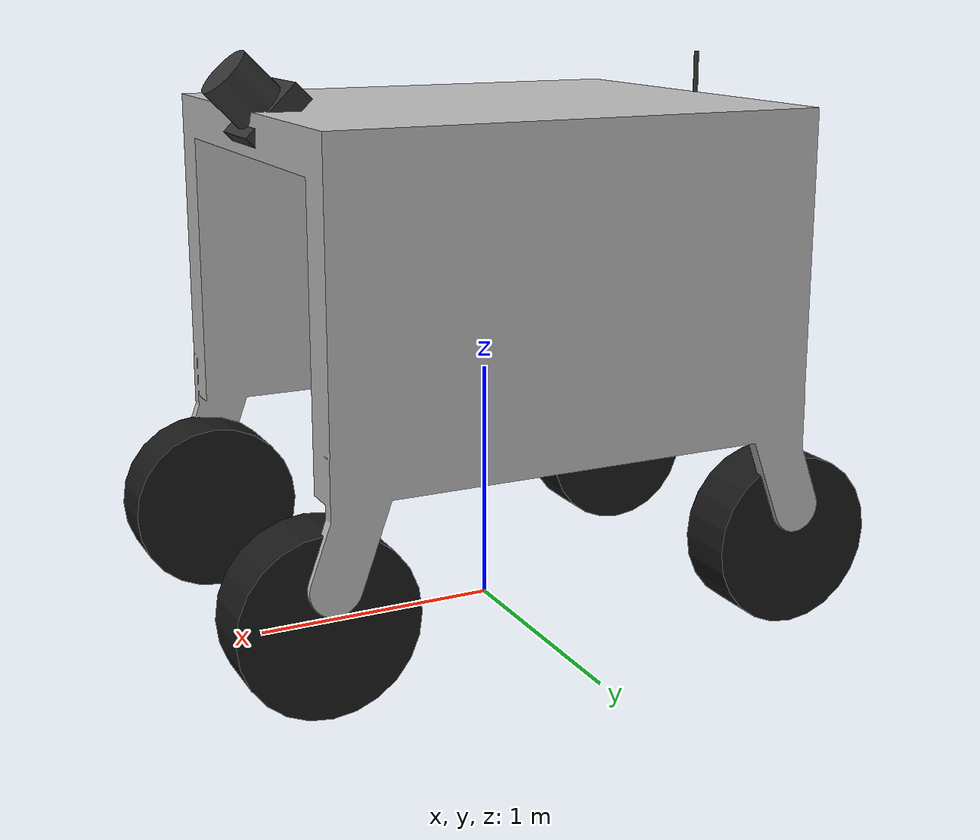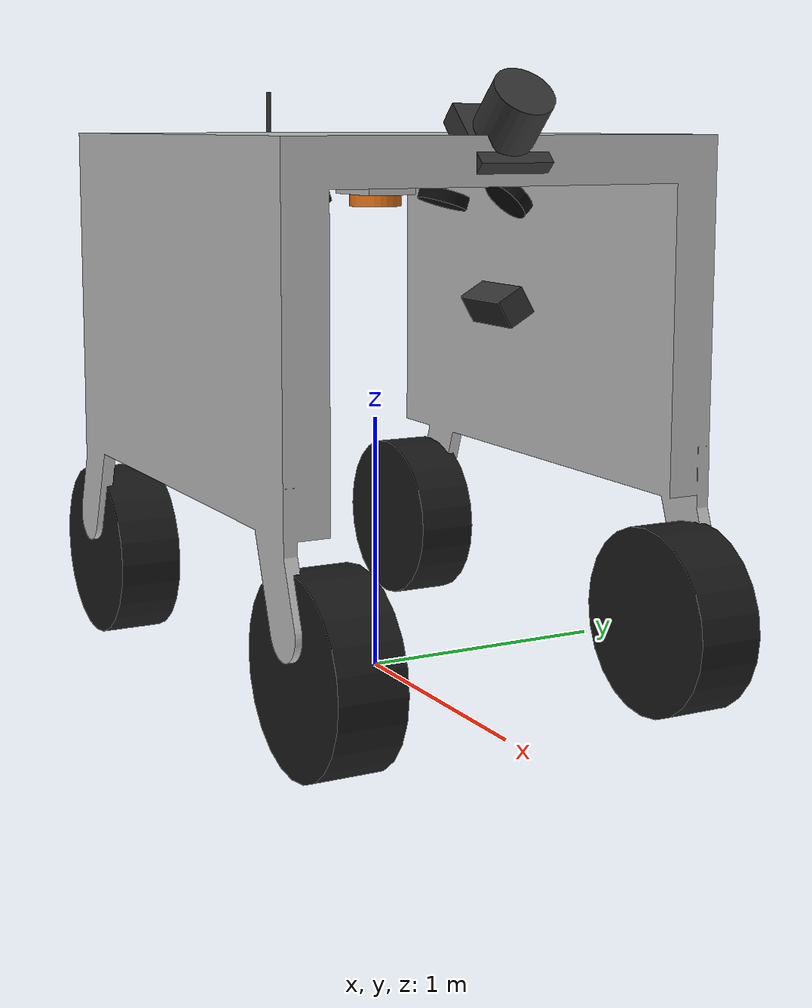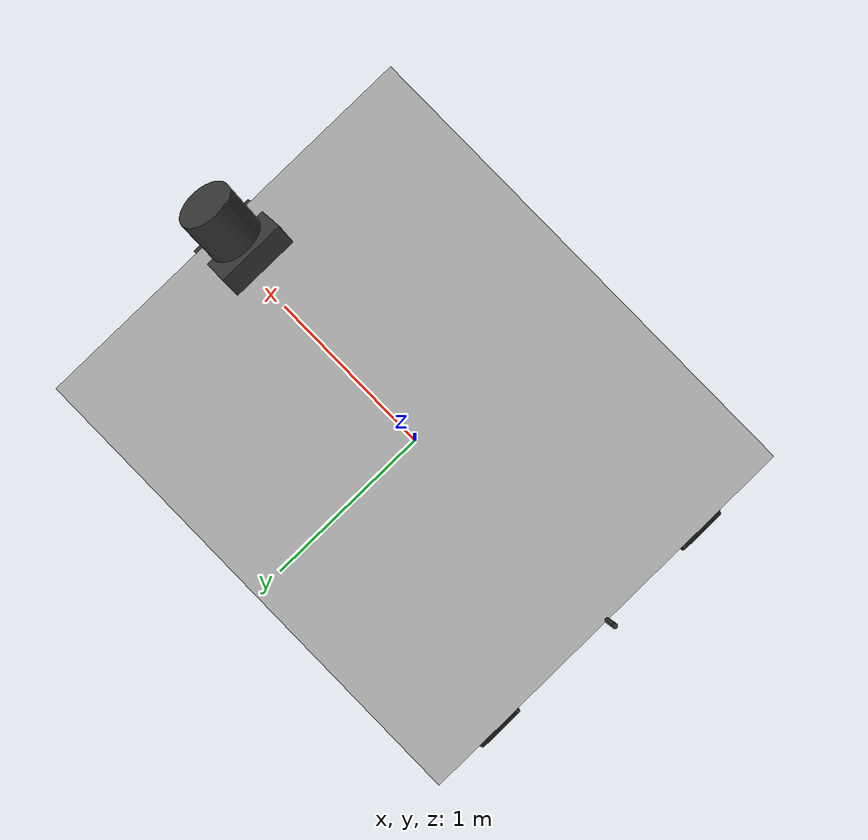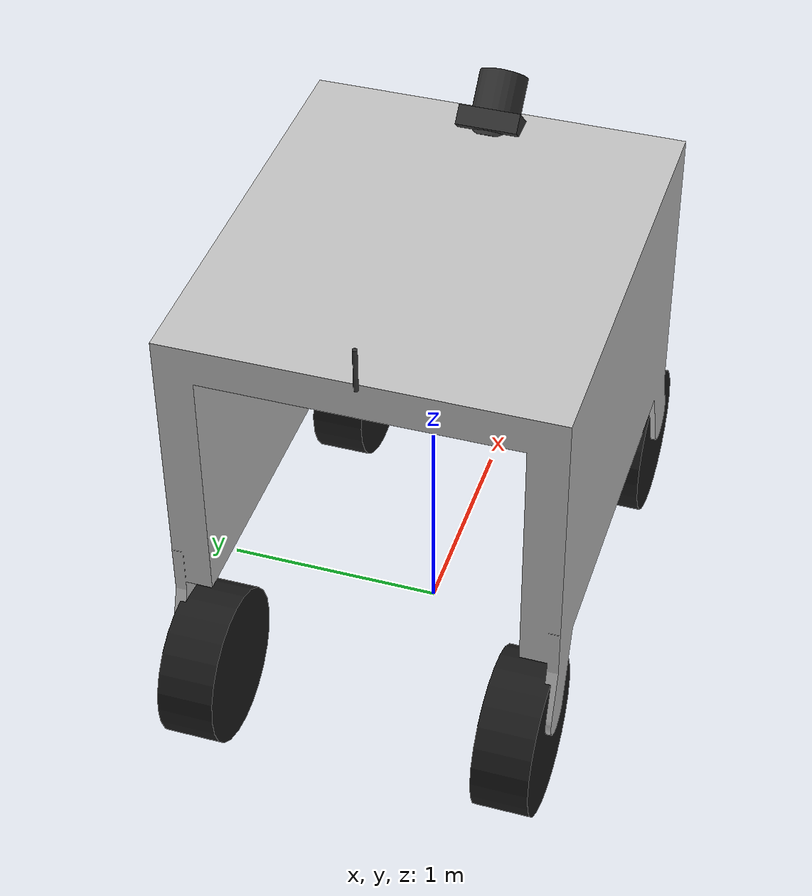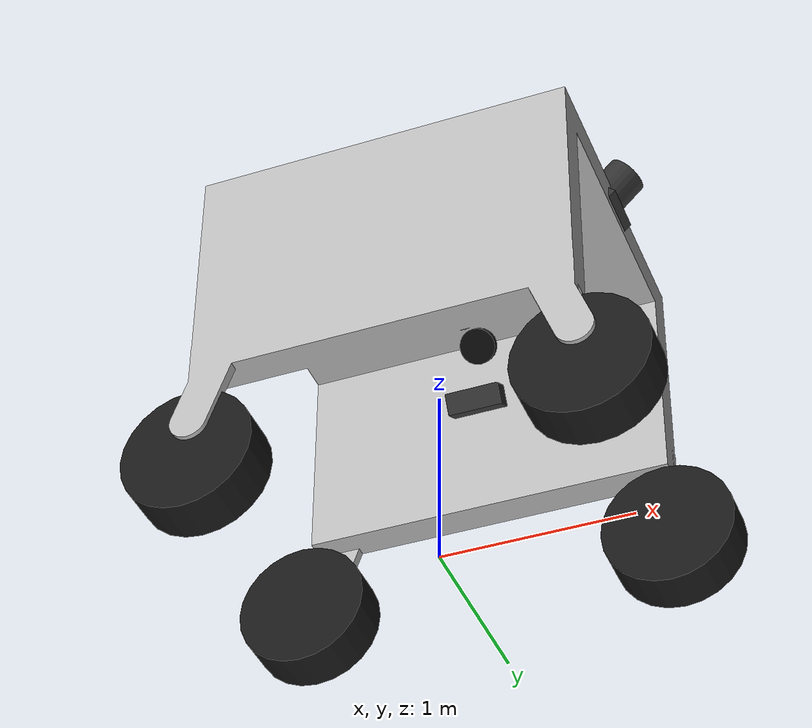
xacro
<?xml version="1.0"?>
<robot name="p23_ugv" xmlns:xacro="http://www.ros.org/wiki/xacro">

  <xacro:include filename="_macros.xacro"/>
  <xacro:include filename="_chassis.xacro"/>
  <xacro:include filename="_lidar_3d.xacro"/>
  <xacro:include filename="_gnss.xacro"/>
  <xacro:include filename="_imu.xacro"/>
  <xacro:include filename="_cameras_rgb.xacro"/>
  <xacro:include filename="_camera_ir.xacro"/>
  <xacro:include filename="_profile_scanners.xacro"/>
  <xacro:include filename="_ros2_control.xacro"/>
  <xacro:include filename="_gazebo.xacro"/>

</robot>

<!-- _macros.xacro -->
<robot xmlns:xacro="http://www.ros.org/wiki/xacro">

  <!-- Chassis -->
  <xacro:property name="chassis_l"  value="1.5"/>  <!-- m, front-rear -->
  <xacro:property name="chassis_w"  value="1.65"/>  <!-- m, left-right  -->
  <xacro:property name="chassis_h"  value="1.89"/>  <!-- m, height       -->
  <xacro:property name="chassis_m"  value="100.0"/>   <!-- kg              -->

  <!-- Wheels -->
  <xacro:property name="wheel_r"    value="0.35"/>   <!-- radius, m       -->
  <xacro:property name="wheel_w"    value="0.25"/>   <!-- width, m        -->
  <xacro:property name="wheel_m"    value="8.0"/>     <!-- kg              -->
  <xacro:property name="wheelbase"  value="2.0"/>   <!-- front-rear axle spacing, m -->
  <xacro:property name="track"      value="1.4"/>   <!-- left-right wheel-centre spacing, m -->

  <!-- Chassis top surface z-offset from base_link origin (= axle height) -->
  <xacro:property name="top_z"      value="1.82"/>

  <!-- ================================================================
       MATERIALS
  ================================================================ -->
  <material name="ugv_green">  <color rgba="0.18 0.42 0.18 1.0"/> </material>
  <material name="tyre_black"> <color rgba="0.10 0.10 0.10 1.0"/> </material>
  <material name="dark_grey">  <color rgba="0.20 0.20 0.20 1.0"/> </material>
  <material name="light_grey"> <color rgba="0.75 0.75 0.75 1.0"/> </material>
  <material name="white">      <color rgba="0.92 0.92 0.92 1.0"/> </material>
  <material name="cam_black">  <color rgba="0.05 0.05 0.05 1.0"/> </material>
  <material name="ir_orange">  <color rgba="0.90 0.45 0.10 1.0"/> </material>

  <!-- ================================================================
       INERTIA MACROS
  ================================================================ -->

  <!-- Uniform solid box.  ox/oy/oz: optional CoM offset from link origin. -->
  <xacro:macro name="box_inertia" params="m x y z ox:=0 oy:=0 oz:=0">
    <inertial>
      <origin xyz="${ox} ${oy} ${oz}" rpy="0 0 0"/>
      <mass value="${m}"/>
      <inertia ixx="${m/12.0*(y*y + z*z)}" ixy="0" ixz="0"
               iyy="${m/12.0*(x*x + z*z)}" iyz="0"
               izz="${m/12.0*(x*x + y*y)}"/>
    </inertial>
  </xacro:macro>

  <!-- Solid cylinder, spin axis along Z (sensor link Z = symmetry axis). -->
  <xacro:macro name="cylinder_inertia" params="m r h">
    <inertial>
      <mass value="${m}"/>
      <inertia ixx="${m/12.0*(3.0*r*r + h*h)}" ixy="0" ixz="0"
               iyy="${m/12.0*(3.0*r*r + h*h)}" iyz="0"
               izz="${m/2.0*r*r}"/>
    </inertial>
  </xacro:macro>

  <!-- Wheel cylinder: spin axis is Y in the link frame.
       Ixx = Izz (transverse),  Iyy = m/2 r² (spin axis). -->
  <xacro:macro name="wheel_inertia" params="m r h">
    <inertial>
      <mass value="${m}"/>
      <inertia ixx="${m/12.0*(3.0*r*r + h*h)}" ixy="0" ixz="0"
               iyy="${m/2.0*r*r}"               iyz="0"
               izz="${m/12.0*(3.0*r*r + h*h)}"/>
    </inertial>
  </xacro:macro>

  <xacro:macro name="wheel" params="name x y">

    <!-- Steering knuckle: visible kingpin cylinder oriented along Z. -->
    <link name="${name}_steer_link">
      <visual>
        <geometry>
          <cylinder radius="0.06" length="0.22"/>
        </geometry>
        <material name="dark_grey"/>
      </visual>
      <collision>
        <geometry>
          <cylinder radius="0.06" length="0.22"/>
        </geometry>
      </collision>
      <xacro:cylinder_inertia m="1.0" r="0.06" h="0.22"/>
    </link>

    <!-- Steer joint: ±90° revolute about Z. -->
    <joint name="${name}_steer_joint" type="revolute">
      <parent link="base_link"/>
      <child  link="${name}_steer_link"/>
      <origin xyz="${x} ${y} 0" rpy="0 0 0"/>
      <axis   xyz="0 0 1"/>
      <limit lower="${-pi/2.0}" upper="${pi/2.0}"
             effort="100.0" velocity="1.0"/>
      <dynamics damping="0.5" friction="0.1"/>
    </joint>

    <!-- Tyre: visual cylinder rotated π/2 about X so its axis aligns with Y. -->
    <link name="${name}_wheel_link">
      <visual>
        <origin xyz="0 0 0" rpy="${pi/2.0} 0 0"/>
        <geometry>
          <cylinder radius="${wheel_r}" length="${wheel_w}"/>
        </geometry>
        <material name="tyre_black"/>
      </visual>
      <collision>
        <origin xyz="0 0 0" rpy="${pi/2.0} 0 0"/>
        <geometry>
          <cylinder radius="${wheel_r}" length="${wheel_w}"/>
        </geometry>
      </collision>
      <xacro:wheel_inertia m="${wheel_m}" r="${wheel_r}" h="${wheel_w}"/>
    </link>

    <!-- Drive joint: rolls about the steered Y axis. -->
    <joint name="${name}_wheel_joint" type="continuous">
      <parent link="${name}_steer_link"/>
      <child  link="${name}_wheel_link"/>
      <origin xyz="0 0 0" rpy="0 0 0"/>
      <axis   xyz="0 1 0"/>
      <dynamics damping="0.1" friction="0.05"/>
    </joint>

  </xacro:macro>

  <!-- ================================================================
       FIXED SENSOR MACROS
  ================================================================ -->

  <!-- Box-shaped sensor. -->
  <xacro:macro name="sensor_box"
               params="name parent x y z roll pitch yaw sx sy sz m mat">
    <link name="${name}_link">
      <visual>
        <geometry><box size="${sx} ${sy} ${sz}"/></geometry>
        <material name="${mat}"/>
      </visual>
      <collision>
        <geometry><box size="${sx} ${sy} ${sz}"/></geometry>
      </collision>
      <xacro:box_inertia m="${m}" x="${sx}" y="${sy}" z="${sz}"/>
    </link>
    <joint name="${name}_joint" type="fixed">
      <parent link="${parent}"/>
      <child  link="${name}_link"/>
      <origin xyz="${x} ${y} ${z}" rpy="${roll} ${pitch} ${yaw}"/>
    </joint>
  </xacro:macro>

  <!-- Cylinder-shaped sensor. -->
  <xacro:macro name="sensor_cylinder"
               params="name parent x y z roll pitch yaw r h m mat">
    <link name="${name}_link">
      <visual>
        <geometry><cylinder radius="${r}" length="${h}"/></geometry>
        <material name="${mat}"/>
      </visual>
      <collision>
        <geometry><cylinder radius="${r}" length="${h}"/></geometry>
      </collision>
      <xacro:cylinder_inertia m="${m}" r="${r}" h="${h}"/>
    </link>
    <joint name="${name}_joint" type="fixed">
      <parent link="${parent}"/>
      <child  link="${name}_link"/>
      <origin xyz="${x} ${y} ${z}" rpy="${roll} ${pitch} ${yaw}"/>
    </joint>
  </xacro:macro>

  <!-- Camera optical frame (REP-104): z=forward, x=right, y=down.
       rpy(-π/2, 0, -π/2) rotates the body frame into the optical frame. -->
  <xacro:macro name="optical_frame" params="name">
    <link name="${name}_optical_link"/>
    <joint name="${name}_optical_joint" type="fixed">
      <parent link="${name}_link"/>
      <child  link="${name}_optical_link"/>
      <origin xyz="0 0 0" rpy="${-pi/2.0} 0 ${-pi/2.0}"/>
    </joint>
  </xacro:macro>

</robot>

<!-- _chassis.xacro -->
<robot xmlns:xacro="http://www.ros.org/wiki/xacro">

  <!-- Ground-plane projection origin, required by Nav2. -->
  <link name="base_footprint"/>

  <joint name="base_footprint_joint" type="fixed">
    <parent link="base_footprint"/>
    <child  link="base_link"/>
    <!-- shift up by wheel_r so base_link sits at axle height -->
    <origin xyz="0 0 ${wheel_r}" rpy="0 0 0"/>
  </joint>

  <!-- Chassis body.
       Origin at axle height, geometric centre of footprint.
       Box visual/collision offset +Z by chassis_h/2 → chassis sits above axle. -->
  <link name="base_link">
    <visual>
      <origin xyz="-1.0 0 0.8" rpy="0 0 0"/>
      <geometry>
        <mesh filename="package://p23_robot_description/meshes/thorvald.stl" scale="0.001 0.001 0.001"/>
      </geometry>
      <material name="light_grey"/>
    </visual>
    <collision>
      <origin xyz="0 0 ${chassis_h/2.0}" rpy="0 0 0"/>
      <geometry>
        <mesh filename="package://p23_robot_description/meshes/thorvald.stl" scale="0.001 0.001 0.001"/>
      </geometry>
    </collision>
    <!-- CoM at chassis geometric centre, offset from base_link origin -->
    <xacro:box_inertia m="${chassis_m}"
                       x="${chassis_l}" y="${chassis_w}" z="${chassis_h}"
                       oz="${chassis_h/2.0}"/>
  </link>

  <xacro:wheel name="front_left"  x=" ${wheelbase/2.0}" y=" ${track/2.0}"/>
  <xacro:wheel name="front_right" x=" ${wheelbase/2.0}" y="${-track/2.0}"/>
  <xacro:wheel name="rear_left"   x="${-wheelbase/2.0}" y=" ${track/2.0}"/>
  <xacro:wheel name="rear_right"  x="${-wheelbase/2.0}" y="${-track/2.0}"/>

</robot>
